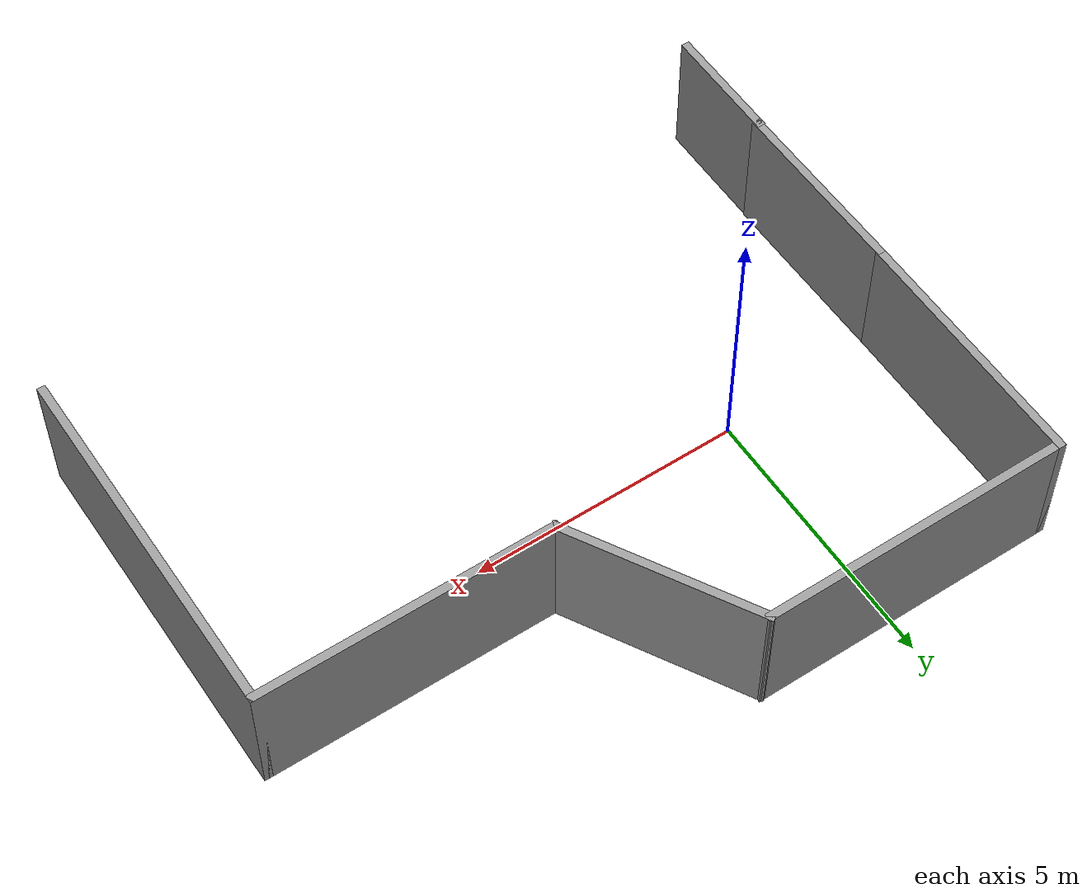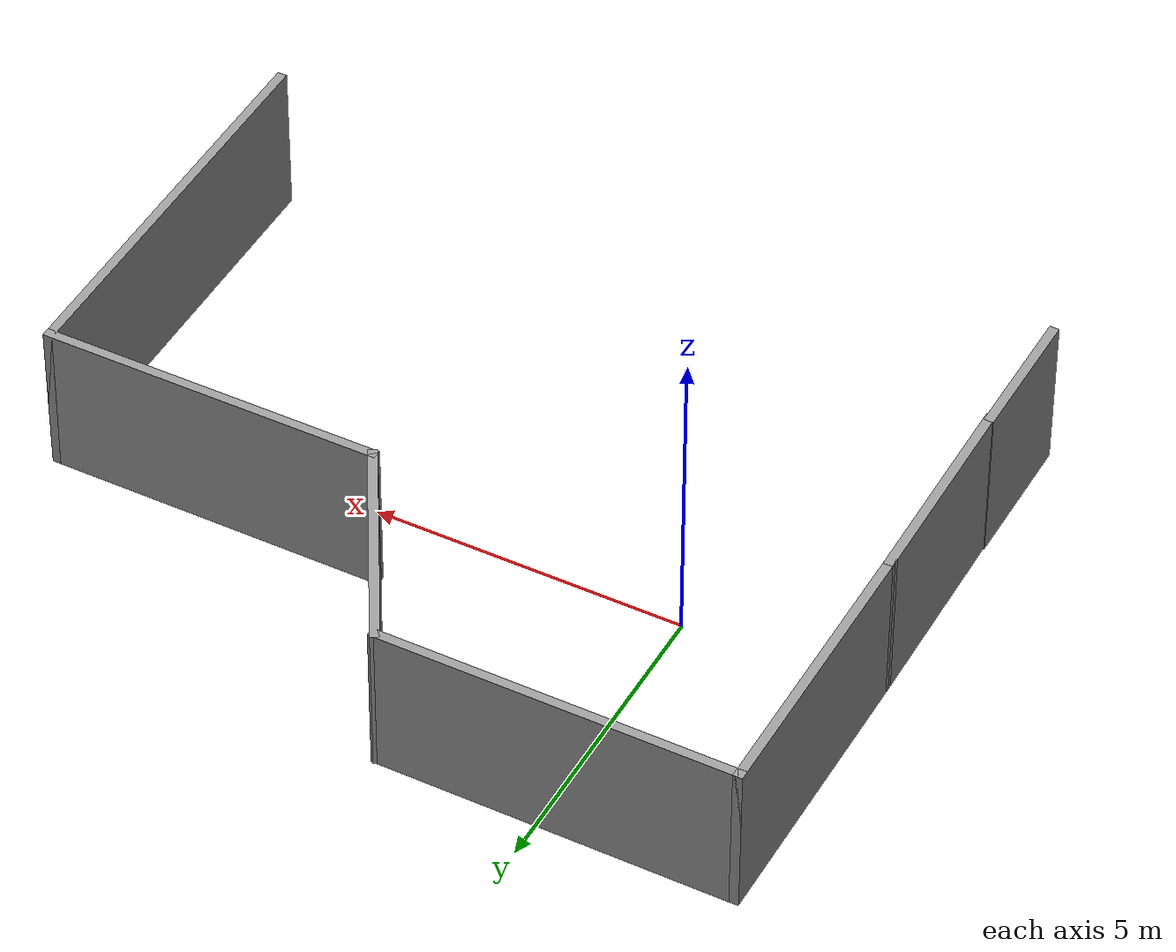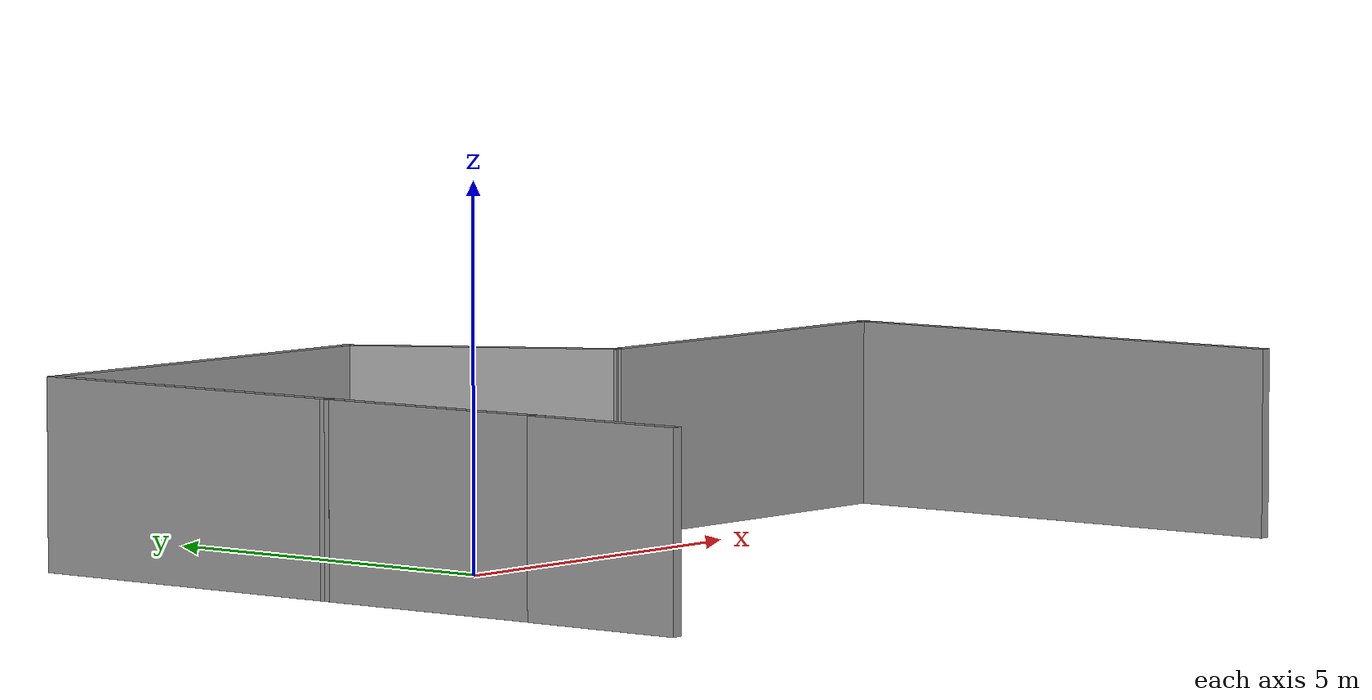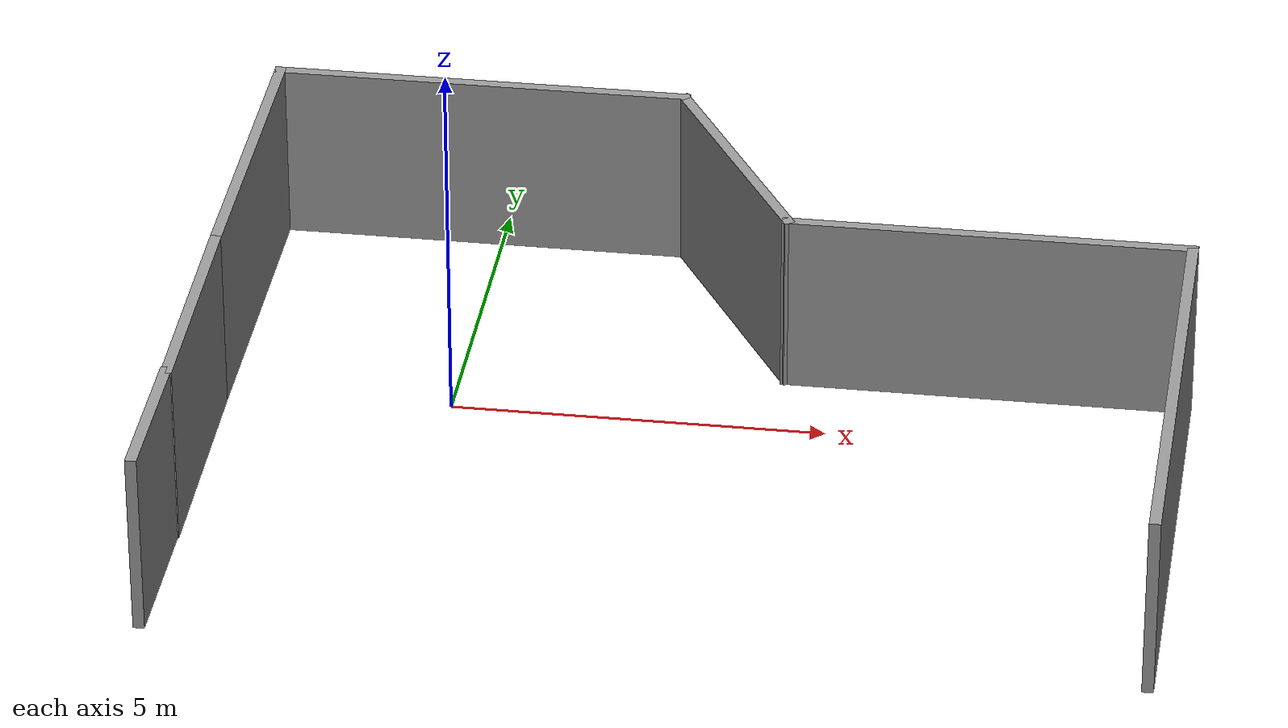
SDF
<?xml version='1.0'?>
<sdf version='1.6'>
  <model name='arm_wall'>
    <pose frame=''>3.30466 -0.643183 0 0 -0 0</pose>
    <link name='Wall_0'>
      <collision name='Wall_0_Collision'>
        <geometry>
          <box>
            <size>2.25 0.15 2.5</size>
          </box>
        </geometry>
        <pose frame=''>0 0 1.25 0 -0 0</pose>
      </collision>
      <visual name='Wall_0_Visual'>
        <pose frame=''>0 0 1.25 0 -0 0</pose>
        <geometry>
          <box>
            <size>2.25 0.15 2.5</size>
          </box>
        </geometry>
        <material>
          <script>
            <uri>file://media/materials/scripts/gazebo.material</uri>
            <name>Gazebo/Grey</name>
          </script>
          <ambient>1 1 1 1</ambient>
        </material>
        <meta>
          <layer>0</layer>
        </meta>
      </visual>
      <pose frame=''>-6.35945 -3.97064 0 0 -0 1.5708</pose>
    </link>
    <link name='Wall_1'>
      <collision name='Wall_1_Collision'>
        <geometry>
          <box>
            <size>3.46413 0.15 2.5</size>
          </box>
        </geometry>
        <pose frame=''>0 0 1.25 0 -0 0</pose>
      </collision>
      <visual name='Wall_1_Visual'>
        <pose frame=''>0 0 1.25 0 -0 0</pose>
        <geometry>
          <box>
            <size>3.46413 0.15 2.5</size>
          </box>
        </geometry>
        <material>
          <script>
            <uri>file://media/materials/scripts/gazebo.material</uri>
            <name>Gazebo/Grey</name>
          </script>
          <ambient>1 1 1 1</ambient>
        </material>
        <meta>
          <layer>0</layer>
        </meta>
      </visual>
      <pose frame=''>-6.35945 -1.26373 0 0 -0 1.57997</pose>
    </link>
    <link name='Wall_4'>
      <collision name='Wall_4_Collision'>
        <geometry>
          <box>
            <size>4.75 0.15 2.5</size>
          </box>
        </geometry>
        <pose frame=''>0 0 1.25 0 -0 0</pose>
      </collision>
      <visual name='Wall_4_Visual'>
        <pose frame=''>0 0 1.25 0 -0 0</pose>
        <geometry>
          <box>
            <size>4.75 0.15 2.5</size>
          </box>
        </geometry>
        <material>
          <script>
            <uri>file://media/materials/scripts/gazebo.material</uri>
            <name>Gazebo/Grey</name>
          </script>
          <ambient>1 1 1 1</ambient>
        </material>
        <meta>
          <layer>0</layer>
        </meta>
      </visual>
      <pose frame=''>-6.37466 2.69318 0 0 -0 1.5708</pose>
    </link>
    <link name='Wall_5'>
      <collision name='Wall_5_Collision'>
        <geometry>
          <box>
            <size>5.75 0.15 2.5</size>
          </box>
        </geometry>
        <pose frame=''>0 0 1.25 0 -0 0</pose>
      </collision>
      <visual name='Wall_5_Visual'>
        <pose frame=''>0 0 1.25 0 -0 0</pose>
        <geometry>
          <box>
            <size>5.75 0.15 2.5</size>
          </box>
        </geometry>
        <material>
          <script>
            <uri>file://media/materials/scripts/gazebo.material</uri>
            <name>Gazebo/Grey</name>
          </script>
          <ambient>1 1 1 1</ambient>
        </material>
        <meta>
          <layer>0</layer>
        </meta>
      </visual>
      <pose frame=''>-3.57466 4.99318 0 0 -0 0</pose>
    </link>
    <link name='Wall_6'>
      <collision name='Wall_6_Collision'>
        <geometry>
          <box>
            <size>3.75 0.15 2.5</size>
          </box>
        </geometry>
        <pose frame=''>0 0 1.25 0 -0 0</pose>
      </collision>
      <visual name='Wall_6_Visual'>
        <pose frame=''>0 0 1.25 0 -0 0</pose>
        <geometry>
          <box>
            <size>3.75 0.15 2.5</size>
          </box>
        </geometry>
        <material>
          <script>
            <uri>file://media/materials/scripts/gazebo.material</uri>
            <name>Gazebo/Grey</name>
          </script>
          <ambient>1 1 1 1</ambient>
        </material>
        <meta>
          <layer>0</layer>
        </meta>
      </visual>
      <pose frame=''>0.125343 3.43434 0 0 -0 -1.0472</pose>
    </link>
    <link name='Wall_7'>
      <collision name='Wall_7_Collision'>
        <geometry>
          <box>
            <size>5.5 0.15 2.5</size>
          </box>
        </geometry>
        <pose frame=''>0 0 1.25 0 -0 0</pose>
      </collision>
      <visual name='Wall_7_Visual'>
        <pose frame=''>0 0 1.25 0 -0 0</pose>
        <geometry>
          <box>
            <size>5.5 0.15 2.5</size>
          </box>
        </geometry>
        <material>
          <script>
            <uri>file://media/materials/scripts/gazebo.material</uri>
            <name>Gazebo/Grey</name>
          </script>
          <ambient>1 1 1 1</ambient>
        </material>
        <meta>
          <layer>0</layer>
        </meta>
      </visual>
      <pose frame=''>3.70034 1.87549 0 0 -0 0</pose>
    </link>
    <link name='Wall_8'>
      <collision name='Wall_8_Collision'>
        <geometry>
          <box>
            <size>6.75 0.15 2.5</size>
          </box>
        </geometry>
        <pose frame=''>0 0 1.25 0 -0 0</pose>
      </collision>
      <visual name='Wall_8_Visual'>
        <pose frame=''>0 0 1.25 0 -0 0</pose>
        <geometry>
          <box>
            <size>6.75 0.15 2.5</size>
          </box>
        </geometry>
        <material>
          <script>
            <uri>file://media/materials/scripts/gazebo.material</uri>
            <name>Gazebo/Grey</name>
          </script>
          <ambient>1 1 1 1</ambient>
        </material>
        <meta>
          <layer>0</layer>
        </meta>
      </visual>
      <pose frame=''>6.37534 -1.42451 0 0 -0 -1.5708</pose>
    </link>
    <static>1</static>
  </model>
</sdf>
